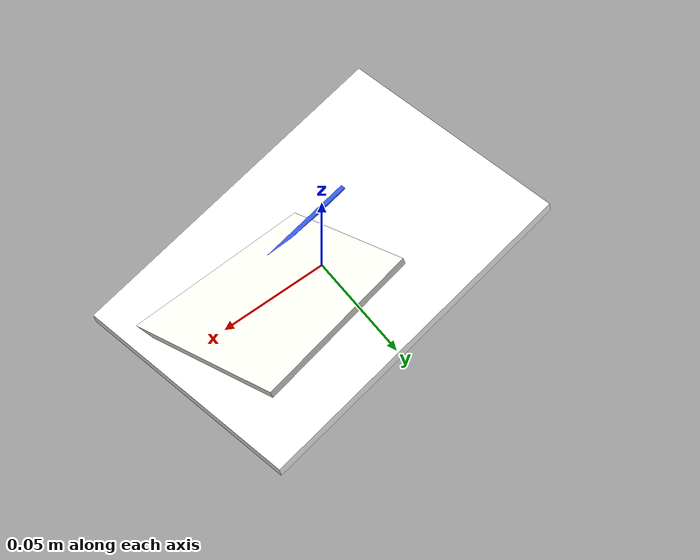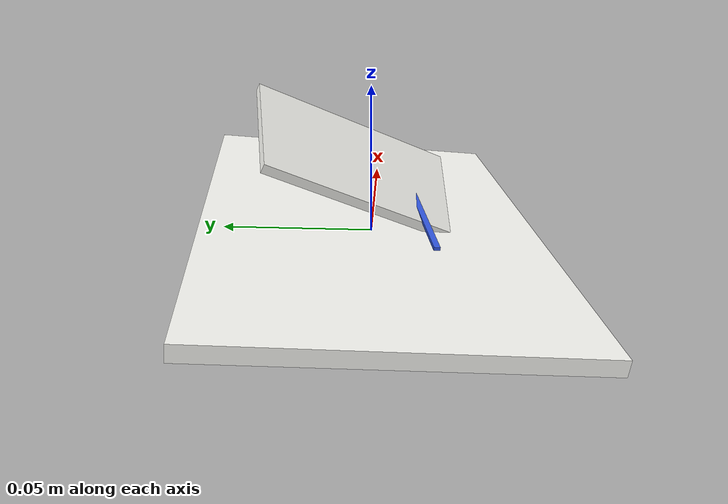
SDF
<?xml version="1.0"?>
<sdf version="1.6">
  <model name="trash_object_green">
    <static>false</static>
    <allow_auto_disable>false</allow_auto_disable>

    <link name="paper_link">
      <pose>0 0 0 0 0 0</pose>

      <inertial>
        <mass>0.01</mass>
        <inertia>
          <ixx>0.00002</ixx>
          <iyy>0.00002</iyy>
          <izz>0.00001</izz>
          <ixy>0</ixy>
          <ixz>0</ixz>
          <iyz>0</iyz>
        </inertia>
      </inertial>

      <collision name="paper_collision">
        <pose>0 0 0.0025 0.12 0.08 0.15</pose>
        <geometry>
          <box>
            <size>0.16 0.11 0.005</size>
          </box>
        </geometry>
      </collision>

      <visual name="paper_base_visual">
        <pose>0 0 0.0025 0.12 0.08 0.15</pose>
        <geometry>
          <box>
            <size>0.16 0.11 0.005</size>
          </box>
        </geometry>
        <material>
          <ambient>0.98 0.98 0.96 1.0</ambient>
          <diffuse>0.98 0.98 0.96 1.0</diffuse>
          <specular>0.10 0.10 0.10 1.0</specular>
        </material>
      </visual>

      <visual name="paper_fold_visual">
        <pose>0.030 0.000 0.010 0.45 0.00 0.20</pose>
        <geometry>
          <box>
            <size>0.08 0.09 0.003</size>
          </box>
        </geometry>
        <material>
          <ambient>0.97 0.97 0.95 1.0</ambient>
          <diffuse>0.97 0.97 0.95 1.0</diffuse>
        </material>
      </visual>

      <visual name="paper_line_1">
        <pose>-0.020 0.000 0.006 0.12 0.08 0.15</pose>
        <geometry>
          <box>
            <size>0.090 0.002 0.001</size>
          </box>
        </geometry>
        <material>
          <ambient>0.20 0.35 0.90 1.0</ambient>
          <diffuse>0.20 0.35 0.90 1.0</diffuse>
        </material>
      </visual>

      <visual name="paper_line_2">
        <pose>0.000 0.015 0.006 0.12 0.08 0.15</pose>
        <geometry>
          <box>
            <size>0.085 0.002 0.001</size>
          </box>
        </geometry>
        <material>
          <ambient>0.20 0.35 0.90 1.0</ambient>
          <diffuse>0.20 0.35 0.90 1.0</diffuse>
        </material>
      </visual>

      <visual name="paper_line_3">
        <pose>0.010 -0.015 0.006 0.12 0.08 0.15</pose>
        <geometry>
          <box>
            <size>0.075 0.002 0.001</size>
          </box>
        </geometry>
        <material>
          <ambient>0.20 0.35 0.90 1.0</ambient>
          <diffuse>0.20 0.35 0.90 1.0</diffuse>
        </material>
      </visual>
    </link>
  </model>
</sdf>
